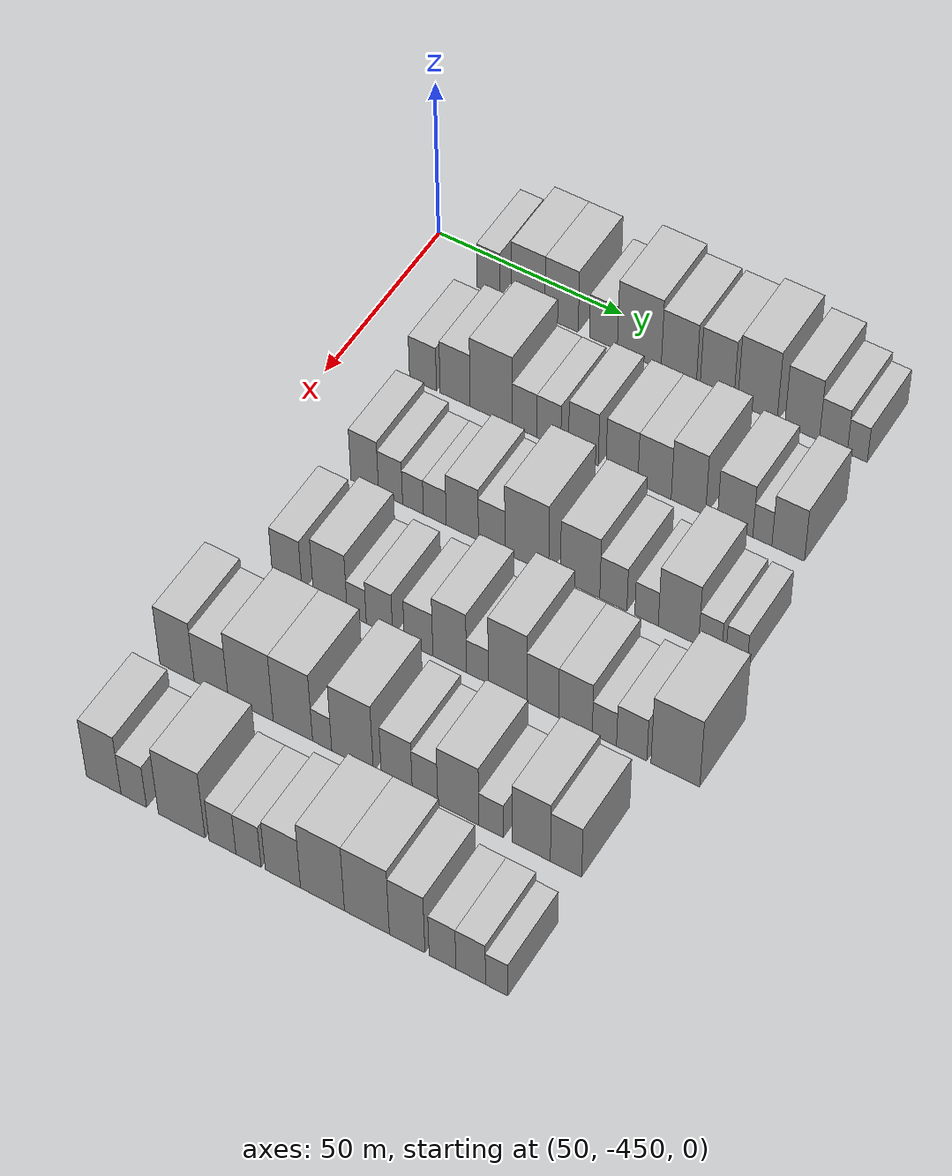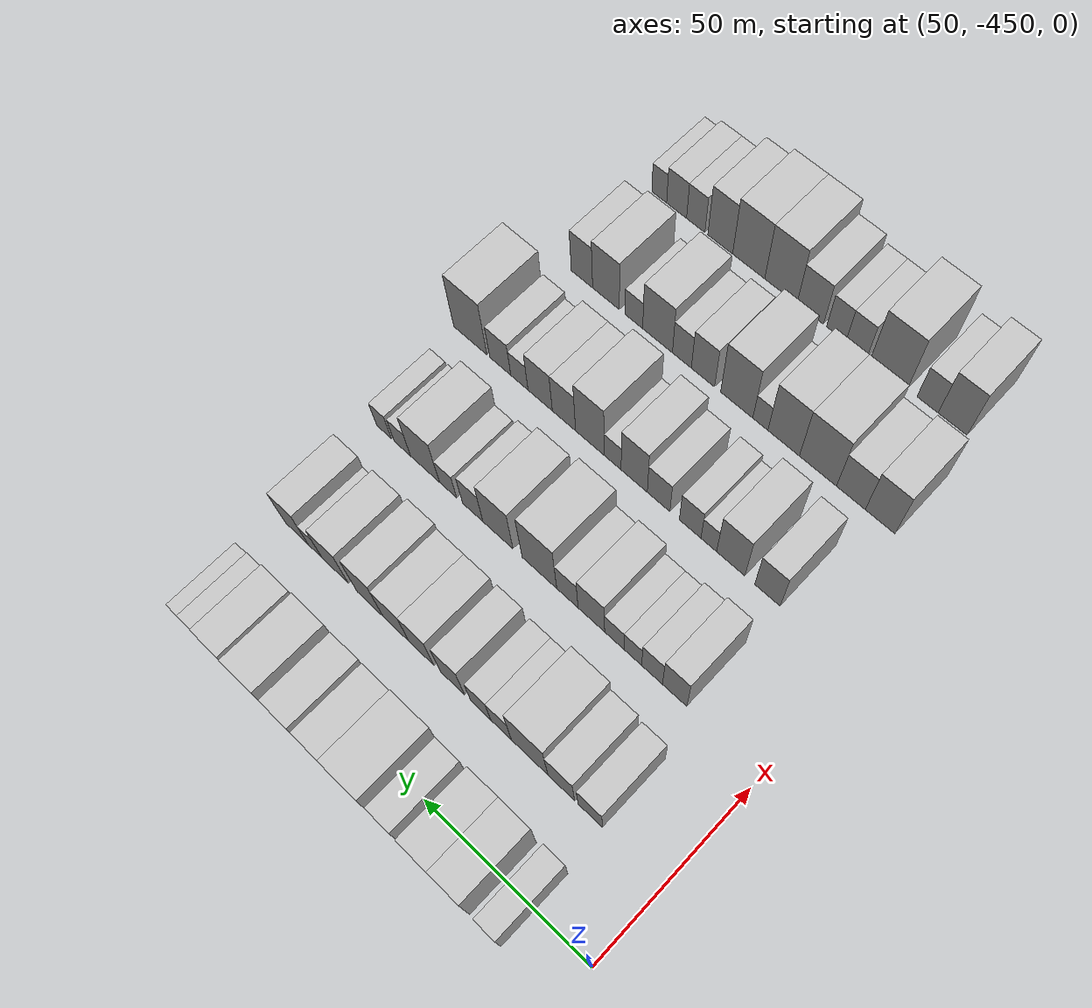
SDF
<sdf version="1.6">
 <world name="default">
  <model name="building_13">
   <static>1</static>
   <pose>50.0000 -430.3010 0 0.000000 0.000000 0.000000</pose>
   <link name="link">
    <pose>0 0 7.50 0 0 0</pose>
    <collision name="collision"><geometry><box><size>20.0000 6.2887 15.0000</size></box></geometry></collision>
    <visual name="visual">
     <cast_shadows>0</cast_shadows>
     <geometry><box><size>20.0000 6.2887 15.0000</size></box></geometry>
     <material>
      <script>
       <uri>model://HANNAS_wall/materials/scripts</uri>
       <uri>model://HANNAS_wall/materials/textures</uri>
       <name>vrc/HANNAS_wall</name>
      </script>
     </material>
    </visual>
   </link>
  </model>
  <model name="building_14">
   <static>1</static>
   <pose>50.0000 -419.5498 0 0.000000 0.000000 0.000000</pose>
   <link name="link">
    <pose>0 0 10.50 0 0 0</pose>
    <collision name="collision"><geometry><box><size>20.0000 9.2139 21.0000</size></box></geometry></collision>
    <visual name="visual">
     <cast_shadows>0</cast_shadows>
     <geometry><box><size>20.0000 9.2139 21.0000</size></box></geometry>
     <material>
      <script>
       <uri>model://HANNAS_wall/materials/scripts</uri>
       <uri>model://HANNAS_wall/materials/textures</uri>
       <name>vrc/HANNAS_wall</name>
      </script>
     </material>
    </visual>
   </link>
  </model>
  <model name="building_15">
   <static>1</static>
   <pose>50.0000 -410.4374 0 0.000000 0.000000 0.000000</pose>
   <link name="link">
    <pose>0 0 10.50 0 0 0</pose>
    <collision name="collision"><geometry><box><size>20.0000 9.0108 21.0000</size></box></geometry></collision>
    <visual name="visual">
     <cast_shadows>0</cast_shadows>
     <geometry><box><size>20.0000 9.0108 21.0000</size></box></geometry>
     <material>
      <script>
       <uri>model://HANNAS_wall/materials/scripts</uri>
       <uri>model://HANNAS_wall/materials/textures</uri>
       <name>vrc/HANNAS_wall</name>
      </script>
     </material>
    </visual>
   </link>
  </model>
  <model name="building_16">
   <static>1</static>
   <pose>50.0000 -399.1959 0 0.000000 0.000000 0.000000</pose>
   <link name="link">
    <pose>0 0 7.50 0 0 0</pose>
    <collision name="collision"><geometry><box><size>20.0000 7.4723 15.0000</size></box></geometry></collision>
    <visual name="visual">
     <cast_shadows>0</cast_shadows>
     <geometry><box><size>20.0000 7.4723 15.0000</size></box></geometry>
     <material>
      <script>
       <uri>model://HANNAS_wall/materials/scripts</uri>
       <uri>model://HANNAS_wall/materials/textures</uri>
       <name>vrc/HANNAS_wall</name>
      </script>
     </material>
    </visual>
   </link>
  </model>
  <model name="building_17">
   <static>1</static>
   <pose>50.0000 -389.6461 0 0.000000 0.000000 0.000000</pose>
   <link name="link">
    <pose>0 0 12.00 0 0 0</pose>
    <collision name="collision"><geometry><box><size>20.0000 11.6273 24.0000</size></box></geometry></collision>
    <visual name="visual">
     <cast_shadows>0</cast_shadows>
     <geometry><box><size>20.0000 11.6273 24.0000</size></box></geometry>
     <material>
      <script>
       <uri>model://HANNAS_wall/materials/scripts</uri>
       <uri>model://HANNAS_wall/materials/textures</uri>
       <name>vrc/HANNAS_wall</name>
      </script>
     </material>
    </visual>
   </link>
  </model>
  <model name="building_18">
   <static>1</static>
   <pose>50.0000 -379.2000 0 0.000000 0.000000 0.000000</pose>
   <link name="link">
    <pose>0 0 10.50 0 0 0</pose>
    <collision name="collision"><geometry><box><size>20.0000 9.2649 21.0000</size></box></geometry></collision>
    <visual name="visual">
     <cast_shadows>0</cast_shadows>
     <geometry><box><size>20.0000 9.2649 21.0000</size></box></geometry>
     <material>
      <script>
       <uri>model://HANNAS_wall/materials/scripts</uri>
       <uri>model://HANNAS_wall/materials/textures</uri>
       <name>vrc/HANNAS_wall</name>
      </script>
     </material>
    </visual>
   </link>
  </model>
  <model name="building_19">
   <static>1</static>
   <pose>50.0000 -369.1609 0 0.000000 0.000000 0.000000</pose>
   <link name="link">
    <pose>0 0 10.50 0 0 0</pose>
    <collision name="collision"><geometry><box><size>20.0000 8.8132 21.0000</size></box></geometry></collision>
    <visual name="visual">
     <cast_shadows>0</cast_shadows>
     <geometry><box><size>20.0000 8.8132 21.0000</size></box></geometry>
     <material>
      <script>
       <uri>model://HANNAS_wall/materials/scripts</uri>
       <uri>model://HANNAS_wall/materials/textures</uri>
       <name>vrc/HANNAS_wall</name>
      </script>
     </material>
    </visual>
   </link>
  </model>
  <model name="building_20">
   <static>1</static>
   <pose>50.0000 -358.6458 0 0.000000 0.000000 0.000000</pose>
   <link name="link">
    <pose>0 0 12.00 0 0 0</pose>
    <collision name="collision"><geometry><box><size>20.0000 10.2170 24.0000</size></box></geometry></collision>
    <visual name="visual">
     <cast_shadows>0</cast_shadows>
     <geometry><box><size>20.0000 10.2170 24.0000</size></box></geometry>
     <material>
      <script>
       <uri>model://HANNAS_wall/materials/scripts</uri>
       <uri>model://HANNAS_wall/materials/textures</uri>
       <name>vrc/HANNAS_wall</name>
      </script>
     </material>
    </visual>
   </link>
  </model>
  <model name="building_21">
   <static>1</static>
   <pose>50.0000 -347.1044 0 0.000000 0.000000 0.000000</pose>
   <link name="link">
    <pose>0 0 10.50 0 0 0</pose>
    <collision name="collision"><geometry><box><size>20.0000 8.8658 21.0000</size></box></geometry></collision>
    <visual name="visual">
     <cast_shadows>0</cast_shadows>
     <geometry><box><size>20.0000 8.8658 21.0000</size></box></geometry>
     <material>
      <script>
       <uri>model://HANNAS_wall/materials/scripts</uri>
       <uri>model://HANNAS_wall/materials/textures</uri>
       <name>vrc/HANNAS_wall</name>
      </script>
     </material>
    </visual>
   </link>
  </model>
  <model name="building_22">
   <static>1</static>
   <pose>50.0000 -339.1000 0 0.000000 0.000000 0.000000</pose>
   <link name="link">
    <pose>0 0 7.50 0 0 0</pose>
    <collision name="collision"><geometry><box><size>20.0000 7.1430 15.0000</size></box></geometry></collision>
    <visual name="visual">
     <cast_shadows>0</cast_shadows>
     <geometry><box><size>20.0000 7.1430 15.0000</size></box></geometry>
     <material>
      <script>
       <uri>model://HANNAS_wall/materials/scripts</uri>
       <uri>model://HANNAS_wall/materials/textures</uri>
       <name>vrc/HANNAS_wall</name>
      </script>
     </material>
    </visual>
   </link>
  </model>
  <model name="building_23">
   <static>1</static>
   <pose>50.0000 -332.9727 0 0.000000 0.000000 0.000000</pose>
   <link name="link">
    <pose>0 0 6.00 0 0 0</pose>
    <collision name="collision"><geometry><box><size>20.0000 5.1115 12.0000</size></box></geometry></collision>
    <visual name="visual">
     <cast_shadows>0</cast_shadows>
     <geometry><box><size>20.0000 5.1115 12.0000</size></box></geometry>
     <material>
      <script>
       <uri>model://HANNAS_wall/materials/scripts</uri>
       <uri>model://HANNAS_wall/materials/textures</uri>
       <name>vrc/HANNAS_wall</name>
      </script>
     </material>
    </visual>
   </link>
  </model>
  <model name="building_128">
   <static>1</static>
   <pose>82.0000 -428.5388 0 0.000000 0.000000 0.000000</pose>
   <link name="link">
    <pose>0 0 7.50 0 0 0</pose>
    <collision name="collision"><geometry><box><size>20.0000 7.2630 15.0000</size></box></geometry></collision>
    <visual name="visual">
     <cast_shadows>0</cast_shadows>
     <geometry><box><size>20.0000 7.2630 15.0000</size></box></geometry>
     <material>
      <script>
       <uri>model://HANNAS_wall/materials/scripts</uri>
       <uri>model://HANNAS_wall/materials/textures</uri>
       <name>vrc/HANNAS_wall</name>
      </script>
     </material>
    </visual>
   </link>
  </model>
  <model name="building_129">
   <static>1</static>
   <pose>82.0000 -419.8873 0 0.000000 0.000000 0.000000</pose>
   <link name="link">
    <pose>0 0 9.00 0 0 0</pose>
    <collision name="collision"><geometry><box><size>20.0000 8.0400 18.0000</size></box></geometry></collision>
    <visual name="visual">
     <cast_shadows>0</cast_shadows>
     <geometry><box><size>20.0000 8.0400 18.0000</size></box></geometry>
     <material>
      <script>
       <uri>model://HANNAS_wall/materials/scripts</uri>
       <uri>model://HANNAS_wall/materials/textures</uri>
       <name>vrc/HANNAS_wall</name>
      </script>
     </material>
    </visual>
   </link>
  </model>
  <model name="building_130">
   <static>1</static>
   <pose>82.0000 -410.2514 0 0.000000 0.000000 0.000000</pose>
   <link name="link">
    <pose>0 0 12.00 0 0 0</pose>
    <collision name="collision"><geometry><box><size>20.0000 11.2320 24.0000</size></box></geometry></collision>
    <visual name="visual">
     <cast_shadows>0</cast_shadows>
     <geometry><box><size>20.0000 11.2320 24.0000</size></box></geometry>
     <material>
      <script>
       <uri>model://HANNAS_wall/materials/scripts</uri>
       <uri>model://HANNAS_wall/materials/textures</uri>
       <name>vrc/HANNAS_wall</name>
      </script>
     </material>
    </visual>
   </link>
  </model>
  <model name="building_131">
   <static>1</static>
   <pose>82.0000 -401.4097 0 0.000000 0.000000 0.000000</pose>
   <link name="link">
    <pose>0 0 7.50 0 0 0</pose>
    <collision name="collision"><geometry><box><size>20.0000 6.4513 15.0000</size></box></geometry></collision>
    <visual name="visual">
     <cast_shadows>0</cast_shadows>
     <geometry><box><size>20.0000 6.4513 15.0000</size></box></geometry>
     <material>
      <script>
       <uri>model://HANNAS_wall/materials/scripts</uri>
       <uri>model://HANNAS_wall/materials/textures</uri>
       <name>vrc/HANNAS_wall</name>
      </script>
     </material>
    </visual>
   </link>
  </model>
  <model name="building_132">
   <static>1</static>
   <pose>82.0000 -395.0272 0 0.000000 0.000000 0.000000</pose>
   <link name="link">
    <pose>0 0 7.50 0 0 0</pose>
    <collision name="collision"><geometry><box><size>20.0000 6.3139 15.0000</size></box></geometry></collision>
    <visual name="visual">
     <cast_shadows>0</cast_shadows>
     <geometry><box><size>20.0000 6.3139 15.0000</size></box></geometry>
     <material>
      <script>
       <uri>model://HANNAS_wall/materials/scripts</uri>
       <uri>model://HANNAS_wall/materials/textures</uri>
       <name>vrc/HANNAS_wall</name>
      </script>
     </material>
    </visual>
   </link>
  </model>
  <model name="building_133">
   <static>1</static>
   <pose>82.0000 -385.9785 0 0.000000 0.000000 0.000000</pose>
   <link name="link">
    <pose>0 0 9.00 0 0 0</pose>
    <collision name="collision"><geometry><box><size>20.0000 7.7834 18.0000</size></box></geometry></collision>
    <visual name="visual">
     <cast_shadows>0</cast_shadows>
     <geometry><box><size>20.0000 7.7834 18.0000</size></box></geometry>
     <material>
      <script>
       <uri>model://HANNAS_wall/materials/scripts</uri>
       <uri>model://HANNAS_wall/materials/textures</uri>
       <name>vrc/HANNAS_wall</name>
      </script>
     </material>
    </visual>
   </link>
  </model>
  <model name="building_134">
   <static>1</static>
   <pose>82.0000 -375.9526 0 0.000000 0.000000 0.000000</pose>
   <link name="link">
    <pose>0 0 9.00 0 0 0</pose>
    <collision name="collision"><geometry><box><size>20.0000 8.2684 18.0000</size></box></geometry></collision>
    <visual name="visual">
     <cast_shadows>0</cast_shadows>
     <geometry><box><size>20.0000 8.2684 18.0000</size></box></geometry>
     <material>
      <script>
       <uri>model://HANNAS_wall/materials/scripts</uri>
       <uri>model://HANNAS_wall/materials/textures</uri>
       <name>vrc/HANNAS_wall</name>
      </script>
     </material>
    </visual>
   </link>
  </model>
  <model name="building_135">
   <static>1</static>
   <pose>82.0000 -367.5201 0 0.000000 0.000000 0.000000</pose>
   <link name="link">
    <pose>0 0 9.00 0 0 0</pose>
    <collision name="collision"><geometry><box><size>20.0000 8.5966 18.0000</size></box></geometry></collision>
    <visual name="visual">
     <cast_shadows>0</cast_shadows>
     <geometry><box><size>20.0000 8.5966 18.0000</size></box></geometry>
     <material>
      <script>
       <uri>model://HANNAS_wall/materials/scripts</uri>
       <uri>model://HANNAS_wall/materials/textures</uri>
       <name>vrc/HANNAS_wall</name>
      </script>
     </material>
    </visual>
   </link>
  </model>
  <model name="building_136">
   <static>1</static>
   <pose>82.0000 -358.8320 0 0.000000 0.000000 0.000000</pose>
   <link name="link">
    <pose>0 0 10.50 0 0 0</pose>
    <collision name="collision"><geometry><box><size>20.0000 8.7795 21.0000</size></box></geometry></collision>
    <visual name="visual">
     <cast_shadows>0</cast_shadows>
     <geometry><box><size>20.0000 8.7795 21.0000</size></box></geometry>
     <material>
      <script>
       <uri>model://HANNAS_wall/materials/scripts</uri>
       <uri>model://HANNAS_wall/materials/textures</uri>
       <name>vrc/HANNAS_wall</name>
      </script>
     </material>
    </visual>
   </link>
  </model>
  <model name="building_137">
   <static>1</static>
   <pose>82.0000 -346.9448 0 0.000000 0.000000 0.000000</pose>
   <link name="link">
    <pose>0 0 9.00 0 0 0</pose>
    <collision name="collision"><geometry><box><size>20.0000 8.9950 18.0000</size></box></geometry></collision>
    <visual name="visual">
     <cast_shadows>0</cast_shadows>
     <geometry><box><size>20.0000 8.9950 18.0000</size></box></geometry>
     <material>
      <script>
       <uri>model://HANNAS_wall/materials/scripts</uri>
       <uri>model://HANNAS_wall/materials/textures</uri>
       <name>vrc/HANNAS_wall</name>
      </script>
     </material>
    </visual>
   </link>
  </model>
  <model name="building_138">
   <static>1</static>
   <pose>82.0000 -340.0449 0 0.000000 0.000000 0.000000</pose>
   <link name="link">
    <pose>0 0 6.00 0 0 0</pose>
    <collision name="collision"><geometry><box><size>20.0000 4.8046 12.0000</size></box></geometry></collision>
    <visual name="visual">
     <cast_shadows>0</cast_shadows>
     <geometry><box><size>20.0000 4.8046 12.0000</size></box></geometry>
     <material>
      <script>
       <uri>model://HANNAS_wall/materials/scripts</uri>
       <uri>model://HANNAS_wall/materials/textures</uri>
       <name>vrc/HANNAS_wall</name>
      </script>
     </material>
    </visual>
   </link>
  </model>
  <model name="building_139">
   <static>1</static>
   <pose>82.0000 -333.5571 0 0.000000 0.000000 0.000000</pose>
   <link name="link">
    <pose>0 0 9.00 0 0 0</pose>
    <collision name="collision"><geometry><box><size>20.0000 8.1710 18.0000</size></box></geometry></collision>
    <visual name="visual">
     <cast_shadows>0</cast_shadows>
     <geometry><box><size>20.0000 8.1710 18.0000</size></box></geometry>
     <material>
      <script>
       <uri>model://HANNAS_wall/materials/scripts</uri>
       <uri>model://HANNAS_wall/materials/textures</uri>
       <name>vrc/HANNAS_wall</name>
      </script>
     </material>
    </visual>
   </link>
  </model>
  <model name="building_249">
   <static>1</static>
   <pose>114.0000 -424.1147 0 0.000000 0.000000 0.000000</pose>
   <link name="link">
    <pose>0 0 9.00 0 0 0</pose>
    <collision name="collision"><geometry><box><size>20.0000 7.3198 18.0000</size></box></geometry></collision>
    <visual name="visual">
     <cast_shadows>0</cast_shadows>
     <geometry><box><size>20.0000 7.3198 18.0000</size></box></geometry>
     <material>
      <script>
       <uri>model://HANNAS_wall/materials/scripts</uri>
       <uri>model://HANNAS_wall/materials/textures</uri>
       <name>vrc/HANNAS_wall</name>
      </script>
     </material>
    </visual>
   </link>
  </model>
  <model name="building_250">
   <static>1</static>
   <pose>114.0000 -417.2787 0 0.000000 0.000000 0.000000</pose>
   <link name="link">
    <pose>0 0 7.50 0 0 0</pose>
    <collision name="collision"><geometry><box><size>20.0000 6.3522 15.0000</size></box></geometry></collision>
    <visual name="visual">
     <cast_shadows>0</cast_shadows>
     <geometry><box><size>20.0000 6.3522 15.0000</size></box></geometry>
     <material>
      <script>
       <uri>model://HANNAS_wall/materials/scripts</uri>
       <uri>model://HANNAS_wall/materials/textures</uri>
       <name>vrc/HANNAS_wall</name>
      </script>
     </material>
    </visual>
   </link>
  </model>
  <model name="building_251">
   <static>1</static>
   <pose>114.0000 -411.3680 0 0.000000 0.000000 0.000000</pose>
   <link name="link">
    <pose>0 0 6.00 0 0 0</pose>
    <collision name="collision"><geometry><box><size>20.0000 5.4691 12.0000</size></box></geometry></collision>
    <visual name="visual">
     <cast_shadows>0</cast_shadows>
     <geometry><box><size>20.0000 5.4691 12.0000</size></box></geometry>
     <material>
      <script>
       <uri>model://HANNAS_wall/materials/scripts</uri>
       <uri>model://HANNAS_wall/materials/textures</uri>
       <name>vrc/HANNAS_wall</name>
      </script>
     </material>
    </visual>
   </link>
  </model>
  <model name="building_252">
   <static>1</static>
   <pose>114.0000 -405.6461 0 0.000000 0.000000 0.000000</pose>
   <link name="link">
    <pose>0 0 6.00 0 0 0</pose>
    <collision name="collision"><geometry><box><size>20.0000 5.9747 12.0000</size></box></geometry></collision>
    <visual name="visual">
     <cast_shadows>0</cast_shadows>
     <geometry><box><size>20.0000 5.9747 12.0000</size></box></geometry>
     <material>
      <script>
       <uri>model://HANNAS_wall/materials/scripts</uri>
       <uri>model://HANNAS_wall/materials/textures</uri>
       <name>vrc/HANNAS_wall</name>
      </script>
     </material>
    </visual>
   </link>
  </model>
  <model name="building_253">
   <static>1</static>
   <pose>114.0000 -398.4708 0 0.000000 0.000000 0.000000</pose>
   <link name="link">
    <pose>0 0 9.00 0 0 0</pose>
    <collision name="collision"><geometry><box><size>20.0000 8.3759 18.0000</size></box></geometry></collision>
    <visual name="visual">
     <cast_shadows>0</cast_shadows>
     <geometry><box><size>20.0000 8.3759 18.0000</size></box></geometry>
     <material>
      <script>
       <uri>model://HANNAS_wall/materials/scripts</uri>
       <uri>model://HANNAS_wall/materials/textures</uri>
       <name>vrc/HANNAS_wall</name>
      </script>
     </material>
    </visual>
   </link>
  </model>
  <model name="building_254">
   <static>1</static>
   <pose>114.0000 -390.8749 0 0.000000 0.000000 0.000000</pose>
   <link name="link">
    <pose>0 0 7.50 0 0 0</pose>
    <collision name="collision"><geometry><box><size>20.0000 6.8160 15.0000</size></box></geometry></collision>
    <visual name="visual">
     <cast_shadows>0</cast_shadows>
     <geometry><box><size>20.0000 6.8160 15.0000</size></box></geometry>
     <material>
      <script>
       <uri>model://HANNAS_wall/materials/scripts</uri>
       <uri>model://HANNAS_wall/materials/textures</uri>
       <name>vrc/HANNAS_wall</name>
      </script>
     </material>
    </visual>
   </link>
  </model>
  <model name="building_255">
   <static>1</static>
   <pose>114.0000 -381.8491 0 0.000000 0.000000 0.000000</pose>
   <link name="link">
    <pose>0 0 12.00 0 0 0</pose>
    <collision name="collision"><geometry><box><size>20.0000 11.2356 24.0000</size></box></geometry></collision>
    <visual name="visual">
     <cast_shadows>0</cast_shadows>
     <geometry><box><size>20.0000 11.2356 24.0000</size></box></geometry>
     <material>
      <script>
       <uri>model://HANNAS_wall/materials/scripts</uri>
       <uri>model://HANNAS_wall/materials/textures</uri>
       <name>vrc/HANNAS_wall</name>
      </script>
     </material>
    </visual>
   </link>
  </model>
  <model name="building_256">
   <static>1</static>
   <pose>114.0000 -368.2294 0 0.000000 0.000000 0.000000</pose>
   <link name="link">
    <pose>0 0 10.50 0 0 0</pose>
    <collision name="collision"><geometry><box><size>20.0000 10.0038 21.0000</size></box></geometry></collision>
    <visual name="visual">
     <cast_shadows>0</cast_shadows>
     <geometry><box><size>20.0000 10.0038 21.0000</size></box></geometry>
     <material>
      <script>
       <uri>model://HANNAS_wall/materials/scripts</uri>
       <uri>model://HANNAS_wall/materials/textures</uri>
       <name>vrc/HANNAS_wall</name>
      </script>
     </material>
    </visual>
   </link>
  </model>
  <model name="building_257">
   <static>1</static>
   <pose>114.0000 -359.8080 0 0.000000 0.000000 0.000000</pose>
   <link name="link">
    <pose>0 0 7.50 0 0 0</pose>
    <collision name="collision"><geometry><box><size>20.0000 6.8392 15.0000</size></box></geometry></collision>
    <visual name="visual">
     <cast_shadows>0</cast_shadows>
     <geometry><box><size>20.0000 6.8392 15.0000</size></box></geometry>
     <material>
      <script>
       <uri>model://HANNAS_wall/materials/scripts</uri>
       <uri>model://HANNAS_wall/materials/textures</uri>
       <name>vrc/HANNAS_wall</name>
      </script>
     </material>
    </visual>
   </link>
  </model>
  <model name="building_258">
   <static>1</static>
   <pose>114.0000 -351.4508 0 0.000000 0.000000 0.000000</pose>
   <link name="link">
    <pose>0 0 6.00 0 0 0</pose>
    <collision name="collision"><geometry><box><size>20.0000 5.8752 12.0000</size></box></geometry></collision>
    <visual name="visual">
     <cast_shadows>0</cast_shadows>
     <geometry><box><size>20.0000 5.8752 12.0000</size></box></geometry>
     <material>
      <script>
       <uri>model://HANNAS_wall/materials/scripts</uri>
       <uri>model://HANNAS_wall/materials/textures</uri>
       <name>vrc/HANNAS_wall</name>
      </script>
     </material>
    </visual>
   </link>
  </model>
  <model name="building_259">
   <static>1</static>
   <pose>114.0000 -343.4964 0 0.000000 0.000000 0.000000</pose>
   <link name="link">
    <pose>0 0 10.50 0 0 0</pose>
    <collision name="collision"><geometry><box><size>20.0000 10.0335 21.0000</size></box></geometry></collision>
    <visual name="visual">
     <cast_shadows>0</cast_shadows>
     <geometry><box><size>20.0000 10.0335 21.0000</size></box></geometry>
     <material>
      <script>
       <uri>model://HANNAS_wall/materials/scripts</uri>
       <uri>model://HANNAS_wall/materials/textures</uri>
       <name>vrc/HANNAS_wall</name>
      </script>
     </material>
    </visual>
   </link>
  </model>
  <model name="building_260">
   <static>1</static>
   <pose>114.0000 -335.6283 0 0.000000 0.000000 0.000000</pose>
   <link name="link">
    <pose>0 0 6.00 0 0 0</pose>
    <collision name="collision"><geometry><box><size>20.0000 5.7027 12.0000</size></box></geometry></collision>
    <visual name="visual">
     <cast_shadows>0</cast_shadows>
     <geometry><box><size>20.0000 5.7027 12.0000</size></box></geometry>
     <material>
      <script>
       <uri>model://HANNAS_wall/materials/scripts</uri>
       <uri>model://HANNAS_wall/materials/textures</uri>
       <name>vrc/HANNAS_wall</name>
      </script>
     </material>
    </visual>
   </link>
  </model>
  <model name="building_261">
   <static>1</static>
   <pose>114.0000 -329.1551 0 0.000000 0.000000 0.000000</pose>
   <link name="link">
    <pose>0 0 6.00 0 0 0</pose>
    <collision name="collision"><geometry><box><size>20.0000 5.2436 12.0000</size></box></geometry></collision>
    <visual name="visual">
     <cast_shadows>0</cast_shadows>
     <geometry><box><size>20.0000 5.2436 12.0000</size></box></geometry>
     <material>
      <script>
       <uri>model://HANNAS_wall/materials/scripts</uri>
       <uri>model://HANNAS_wall/materials/textures</uri>
       <name>vrc/HANNAS_wall</name>
      </script>
     </material>
    </visual>
   </link>
  </model>
  <model name="building_369">
   <static>1</static>
   <pose>146.0000 -423.9858 0 0.000000 0.000000 0.000000</pose>
   <link name="link">
    <pose>0 0 9.00 0 0 0</pose>
    <collision name="collision"><geometry><box><size>20.0000 7.7063 18.0000</size></box></geometry></collision>
    <visual name="visual">
     <cast_shadows>0</cast_shadows>
     <geometry><box><size>20.0000 7.7063 18.0000</size></box></geometry>
     <material>
      <script>
       <uri>model://HANNAS_wall/materials/scripts</uri>
       <uri>model://HANNAS_wall/materials/textures</uri>
       <name>vrc/HANNAS_wall</name>
      </script>
     </material>
    </visual>
   </link>
  </model>
  <model name="building_370">
   <static>1</static>
   <pose>146.0000 -412.7610 0 0.000000 0.000000 0.000000</pose>
   <link name="link">
    <pose>0 0 10.50 0 0 0</pose>
    <collision name="collision"><geometry><box><size>20.0000 8.7433 21.0000</size></box></geometry></collision>
    <visual name="visual">
     <cast_shadows>0</cast_shadows>
     <geometry><box><size>20.0000 8.7433 21.0000</size></box></geometry>
     <material>
      <script>
       <uri>model://HANNAS_wall/materials/scripts</uri>
       <uri>model://HANNAS_wall/materials/textures</uri>
       <name>vrc/HANNAS_wall</name>
      </script>
     </material>
    </visual>
   </link>
  </model>
  <model name="building_371">
   <static>1</static>
   <pose>146.0000 -405.9318 0 0.000000 0.000000 0.000000</pose>
   <link name="link">
    <pose>0 0 6.00 0 0 0</pose>
    <collision name="collision"><geometry><box><size>20.0000 4.9151 12.0000</size></box></geometry></collision>
    <visual name="visual">
     <cast_shadows>0</cast_shadows>
     <geometry><box><size>20.0000 4.9151 12.0000</size></box></geometry>
     <material>
      <script>
       <uri>model://HANNAS_wall/materials/scripts</uri>
       <uri>model://HANNAS_wall/materials/textures</uri>
       <name>vrc/HANNAS_wall</name>
      </script>
     </material>
    </visual>
   </link>
  </model>
  <model name="building_372">
   <static>1</static>
   <pose>146.0000 -400.0791 0 0.000000 0.000000 0.000000</pose>
   <link name="link">
    <pose>0 0 7.50 0 0 0</pose>
    <collision name="collision"><geometry><box><size>20.0000 6.7902 15.0000</size></box></geometry></collision>
    <visual name="visual">
     <cast_shadows>0</cast_shadows>
     <geometry><box><size>20.0000 6.7902 15.0000</size></box></geometry>
     <material>
      <script>
       <uri>model://HANNAS_wall/materials/scripts</uri>
       <uri>model://HANNAS_wall/materials/textures</uri>
       <name>vrc/HANNAS_wall</name>
      </script>
     </material>
    </visual>
   </link>
  </model>
  <model name="building_373">
   <static>1</static>
   <pose>146.0000 -390.0543 0 0.000000 0.000000 0.000000</pose>
   <link name="link">
    <pose>0 0 7.50 0 0 0</pose>
    <collision name="collision"><geometry><box><size>20.0000 7.2594 15.0000</size></box></geometry></collision>
    <visual name="visual">
     <cast_shadows>0</cast_shadows>
     <geometry><box><size>20.0000 7.2594 15.0000</size></box></geometry>
     <material>
      <script>
       <uri>model://HANNAS_wall/materials/scripts</uri>
       <uri>model://HANNAS_wall/materials/textures</uri>
       <name>vrc/HANNAS_wall</name>
      </script>
     </material>
    </visual>
   </link>
  </model>
  <model name="building_374">
   <static>1</static>
   <pose>146.0000 -382.1661 0 0.000000 0.000000 0.000000</pose>
   <link name="link">
    <pose>0 0 10.50 0 0 0</pose>
    <collision name="collision"><geometry><box><size>20.0000 8.5168 21.0000</size></box></geometry></collision>
    <visual name="visual">
     <cast_shadows>0</cast_shadows>
     <geometry><box><size>20.0000 8.5168 21.0000</size></box></geometry>
     <material>
      <script>
       <uri>model://HANNAS_wall/materials/scripts</uri>
       <uri>model://HANNAS_wall/materials/textures</uri>
       <name>vrc/HANNAS_wall</name>
      </script>
     </material>
    </visual>
   </link>
  </model>
  <model name="building_375">
   <static>1</static>
   <pose>146.0000 -375.1636 0 0.000000 0.000000 0.000000</pose>
   <link name="link">
    <pose>0 0 6.00 0 0 0</pose>
    <collision name="collision"><geometry><box><size>20.0000 5.4883 12.0000</size></box></geometry></collision>
    <visual name="visual">
     <cast_shadows>0</cast_shadows>
     <geometry><box><size>20.0000 5.4883 12.0000</size></box></geometry>
     <material>
      <script>
       <uri>model://HANNAS_wall/materials/scripts</uri>
       <uri>model://HANNAS_wall/materials/textures</uri>
       <name>vrc/HANNAS_wall</name>
      </script>
     </material>
    </visual>
   </link>
  </model>
  <model name="building_376">
   <static>1</static>
   <pose>146.0000 -367.6193 0 0.000000 0.000000 0.000000</pose>
   <link name="link">
    <pose>0 0 12.00 0 0 0</pose>
    <collision name="collision"><geometry><box><size>20.0000 9.6003 24.0000</size></box></geometry></collision>
    <visual name="visual">
     <cast_shadows>0</cast_shadows>
     <geometry><box><size>20.0000 9.6003 24.0000</size></box></geometry>
     <material>
      <script>
       <uri>model://HANNAS_wall/materials/scripts</uri>
       <uri>model://HANNAS_wall/materials/textures</uri>
       <name>vrc/HANNAS_wall</name>
      </script>
     </material>
    </visual>
   </link>
  </model>
  <model name="building_377">
   <static>1</static>
   <pose>146.0000 -358.8707 0 0.000000 0.000000 0.000000</pose>
   <link name="link">
    <pose>0 0 9.00 0 0 0</pose>
    <collision name="collision"><geometry><box><size>20.0000 7.8969 18.0000</size></box></geometry></collision>
    <visual name="visual">
     <cast_shadows>0</cast_shadows>
     <geometry><box><size>20.0000 7.8969 18.0000</size></box></geometry>
     <material>
      <script>
       <uri>model://HANNAS_wall/materials/scripts</uri>
       <uri>model://HANNAS_wall/materials/textures</uri>
       <name>vrc/HANNAS_wall</name>
      </script>
     </material>
    </visual>
   </link>
  </model>
  <model name="building_378">
   <static>1</static>
   <pose>146.0000 -350.7572 0 0.000000 0.000000 0.000000</pose>
   <link name="link">
    <pose>0 0 9.00 0 0 0</pose>
    <collision name="collision"><geometry><box><size>20.0000 8.3303 18.0000</size></box></geometry></collision>
    <visual name="visual">
     <cast_shadows>0</cast_shadows>
     <geometry><box><size>20.0000 8.3303 18.0000</size></box></geometry>
     <material>
      <script>
       <uri>model://HANNAS_wall/materials/scripts</uri>
       <uri>model://HANNAS_wall/materials/textures</uri>
       <name>vrc/HANNAS_wall</name>
      </script>
     </material>
    </visual>
   </link>
  </model>
  <model name="building_379">
   <static>1</static>
   <pose>146.0000 -343.6149 0 0.000000 0.000000 0.000000</pose>
   <link name="link">
    <pose>0 0 6.00 0 0 0</pose>
    <collision name="collision"><geometry><box><size>20.0000 5.9542 12.0000</size></box></geometry></collision>
    <visual name="visual">
     <cast_shadows>0</cast_shadows>
     <geometry><box><size>20.0000 5.9542 12.0000</size></box></geometry>
     <material>
      <script>
       <uri>model://HANNAS_wall/materials/scripts</uri>
       <uri>model://HANNAS_wall/materials/textures</uri>
       <name>vrc/HANNAS_wall</name>
      </script>
     </material>
    </visual>
   </link>
  </model>
  <model name="building_380">
   <static>1</static>
   <pose>146.0000 -336.9383 0 0.000000 0.000000 0.000000</pose>
   <link name="link">
    <pose>0 0 7.50 0 0 0</pose>
    <collision name="collision"><geometry><box><size>20.0000 7.3992 15.0000</size></box></geometry></collision>
    <visual name="visual">
     <cast_shadows>0</cast_shadows>
     <geometry><box><size>20.0000 7.3992 15.0000</size></box></geometry>
     <material>
      <script>
       <uri>model://HANNAS_wall/materials/scripts</uri>
       <uri>model://HANNAS_wall/materials/textures</uri>
       <name>vrc/HANNAS_wall</name>
      </script>
     </material>
    </visual>
   </link>
  </model>
  <model name="building_381">
   <static>1</static>
   <pose>146.0000 -326.3281 0 0.000000 0.000000 0.000000</pose>
   <link name="link">
    <pose>0 0 12.00 0 0 0</pose>
    <collision name="collision"><geometry><box><size>20.0000 11.8211 24.0000</size></box></geometry></collision>
    <visual name="visual">
     <cast_shadows>0</cast_shadows>
     <geometry><box><size>20.0000 11.8211 24.0000</size></box></geometry>
     <material>
      <script>
       <uri>model://HANNAS_wall/materials/scripts</uri>
       <uri>model://HANNAS_wall/materials/textures</uri>
       <name>vrc/HANNAS_wall</name>
      </script>
     </material>
    </visual>
   </link>
  </model>
  <model name="building_487">
   <static>1</static>
   <pose>178.0000 -431.5425 0 0.000000 0.000000 0.000000</pose>
   <link name="link">
    <pose>0 0 10.50 0 0 0</pose>
    <collision name="collision"><geometry><box><size>20.0000 8.9365 21.0000</size></box></geometry></collision>
    <visual name="visual">
     <cast_shadows>0</cast_shadows>
     <geometry><box><size>20.0000 8.9365 21.0000</size></box></geometry>
     <material>
      <script>
       <uri>model://HANNAS_wall/materials/scripts</uri>
       <uri>model://HANNAS_wall/materials/textures</uri>
       <name>vrc/HANNAS_wall</name>
      </script>
     </material>
    </visual>
   </link>
  </model>
  <model name="building_488">
   <static>1</static>
   <pose>178.0000 -422.6701 0 0.000000 0.000000 0.000000</pose>
   <link name="link">
    <pose>0 0 9.00 0 0 0</pose>
    <collision name="collision"><geometry><box><size>20.0000 8.8083 18.0000</size></box></geometry></collision>
    <visual name="visual">
     <cast_shadows>0</cast_shadows>
     <geometry><box><size>20.0000 8.8083 18.0000</size></box></geometry>
     <material>
      <script>
       <uri>model://HANNAS_wall/materials/scripts</uri>
       <uri>model://HANNAS_wall/materials/textures</uri>
       <name>vrc/HANNAS_wall</name>
      </script>
     </material>
    </visual>
   </link>
  </model>
  <model name="building_489">
   <static>1</static>
   <pose>178.0000 -412.5039 0 0.000000 0.000000 0.000000</pose>
   <link name="link">
    <pose>0 0 12.00 0 0 0</pose>
    <collision name="collision"><geometry><box><size>20.0000 11.5240 24.0000</size></box></geometry></collision>
    <visual name="visual">
     <cast_shadows>0</cast_shadows>
     <geometry><box><size>20.0000 11.5240 24.0000</size></box></geometry>
     <material>
      <script>
       <uri>model://HANNAS_wall/materials/scripts</uri>
       <uri>model://HANNAS_wall/materials/textures</uri>
       <name>vrc/HANNAS_wall</name>
      </script>
     </material>
    </visual>
   </link>
  </model>
  <model name="building_490">
   <static>1</static>
   <pose>178.0000 -401.7522 0 0.000000 0.000000 0.000000</pose>
   <link name="link">
    <pose>0 0 12.00 0 0 0</pose>
    <collision name="collision"><geometry><box><size>20.0000 9.9795 24.0000</size></box></geometry></collision>
    <visual name="visual">
     <cast_shadows>0</cast_shadows>
     <geometry><box><size>20.0000 9.9795 24.0000</size></box></geometry>
     <material>
      <script>
       <uri>model://HANNAS_wall/materials/scripts</uri>
       <uri>model://HANNAS_wall/materials/textures</uri>
       <name>vrc/HANNAS_wall</name>
      </script>
     </material>
    </visual>
   </link>
  </model>
  <model name="building_491">
   <static>1</static>
   <pose>178.0000 -394.3463 0 0.000000 0.000000 0.000000</pose>
   <link name="link">
    <pose>0 0 6.00 0 0 0</pose>
    <collision name="collision"><geometry><box><size>20.0000 4.8323 12.0000</size></box></geometry></collision>
    <visual name="visual">
     <cast_shadows>0</cast_shadows>
     <geometry><box><size>20.0000 4.8323 12.0000</size></box></geometry>
     <material>
      <script>
       <uri>model://HANNAS_wall/materials/scripts</uri>
       <uri>model://HANNAS_wall/materials/textures</uri>
       <name>vrc/HANNAS_wall</name>
      </script>
     </material>
    </visual>
   </link>
  </model>
  <model name="building_492">
   <static>1</static>
   <pose>178.0000 -386.7082 0 0.000000 0.000000 0.000000</pose>
   <link name="link">
    <pose>0 0 12.00 0 0 0</pose>
    <collision name="collision"><geometry><box><size>20.0000 10.4438 24.0000</size></box></geometry></collision>
    <visual name="visual">
     <cast_shadows>0</cast_shadows>
     <geometry><box><size>20.0000 10.4438 24.0000</size></box></geometry>
     <material>
      <script>
       <uri>model://HANNAS_wall/materials/scripts</uri>
       <uri>model://HANNAS_wall/materials/textures</uri>
       <name>vrc/HANNAS_wall</name>
      </script>
     </material>
    </visual>
   </link>
  </model>
  <model name="building_493">
   <static>1</static>
   <pose>178.0000 -375.6429 0 0.000000 0.000000 0.000000</pose>
   <link name="link">
    <pose>0 0 9.00 0 0 0</pose>
    <collision name="collision"><geometry><box><size>20.0000 7.6869 18.0000</size></box></geometry></collision>
    <visual name="visual">
     <cast_shadows>0</cast_shadows>
     <geometry><box><size>20.0000 7.6869 18.0000</size></box></geometry>
     <material>
      <script>
       <uri>model://HANNAS_wall/materials/scripts</uri>
       <uri>model://HANNAS_wall/materials/textures</uri>
       <name>vrc/HANNAS_wall</name>
      </script>
     </material>
    </visual>
   </link>
  </model>
  <model name="building_494">
   <static>1</static>
   <pose>178.0000 -368.6520 0 0.000000 0.000000 0.000000</pose>
   <link name="link">
    <pose>0 0 7.50 0 0 0</pose>
    <collision name="collision"><geometry><box><size>20.0000 6.2950 15.0000</size></box></geometry></collision>
    <visual name="visual">
     <cast_shadows>0</cast_shadows>
     <geometry><box><size>20.0000 6.2950 15.0000</size></box></geometry>
     <material>
      <script>
       <uri>model://HANNAS_wall/materials/scripts</uri>
       <uri>model://HANNAS_wall/materials/textures</uri>
       <name>vrc/HANNAS_wall</name>
      </script>
     </material>
    </visual>
   </link>
  </model>
  <model name="building_495">
   <static>1</static>
   <pose>178.0000 -360.4646 0 0.000000 0.000000 0.000000</pose>
   <link name="link">
    <pose>0 0 10.50 0 0 0</pose>
    <collision name="collision"><geometry><box><size>20.0000 10.0797 21.0000</size></box></geometry></collision>
    <visual name="visual">
     <cast_shadows>0</cast_shadows>
     <geometry><box><size>20.0000 10.0797 21.0000</size></box></geometry>
     <material>
      <script>
       <uri>model://HANNAS_wall/materials/scripts</uri>
       <uri>model://HANNAS_wall/materials/textures</uri>
       <name>vrc/HANNAS_wall</name>
      </script>
     </material>
    </visual>
   </link>
  </model>
  <model name="building_496">
   <static>1</static>
   <pose>178.0000 -352.4260 0 0.000000 0.000000 0.000000</pose>
   <link name="link">
    <pose>0 0 6.00 0 0 0</pose>
    <collision name="collision"><geometry><box><size>20.0000 5.9976 12.0000</size></box></geometry></collision>
    <visual name="visual">
     <cast_shadows>0</cast_shadows>
     <geometry><box><size>20.0000 5.9976 12.0000</size></box></geometry>
     <material>
      <script>
       <uri>model://HANNAS_wall/materials/scripts</uri>
       <uri>model://HANNAS_wall/materials/textures</uri>
       <name>vrc/HANNAS_wall</name>
      </script>
     </material>
    </visual>
   </link>
  </model>
  <model name="building_497">
   <static>1</static>
   <pose>178.0000 -342.7663 0 0.000000 0.000000 0.000000</pose>
   <link name="link">
    <pose>0 0 10.50 0 0 0</pose>
    <collision name="collision"><geometry><box><size>20.0000 9.3217 21.0000</size></box></geometry></collision>
    <visual name="visual">
     <cast_shadows>0</cast_shadows>
     <geometry><box><size>20.0000 9.3217 21.0000</size></box></geometry>
     <material>
      <script>
       <uri>model://HANNAS_wall/materials/scripts</uri>
       <uri>model://HANNAS_wall/materials/textures</uri>
       <name>vrc/HANNAS_wall</name>
      </script>
     </material>
    </visual>
   </link>
  </model>
  <model name="building_498">
   <static>1</static>
   <pose>178.0000 -334.3478 0 0.000000 0.000000 0.000000</pose>
   <link name="link">
    <pose>0 0 9.00 0 0 0</pose>
    <collision name="collision"><geometry><box><size>20.0000 7.5153 18.0000</size></box></geometry></collision>
    <visual name="visual">
     <cast_shadows>0</cast_shadows>
     <geometry><box><size>20.0000 7.5153 18.0000</size></box></geometry>
     <material>
      <script>
       <uri>model://HANNAS_wall/materials/scripts</uri>
       <uri>model://HANNAS_wall/materials/textures</uri>
       <name>vrc/HANNAS_wall</name>
      </script>
     </material>
    </visual>
   </link>
  </model>
  <model name="building_614">
   <static>1</static>
   <pose>210.0000 -428.4398 0 0.000000 0.000000 0.000000</pose>
   <link name="link">
    <pose>0 0 10.50 0 0 0</pose>
    <collision name="collision"><geometry><box><size>20.0000 8.8324 21.0000</size></box></geometry></collision>
    <visual name="visual">
     <cast_shadows>0</cast_shadows>
     <geometry><box><size>20.0000 8.8324 21.0000</size></box></geometry>
     <material>
      <script>
       <uri>model://HANNAS_wall/materials/scripts</uri>
       <uri>model://HANNAS_wall/materials/textures</uri>
       <name>vrc/HANNAS_wall</name>
      </script>
     </material>
    </visual>
   </link>
  </model>
  <model name="building_615">
   <static>1</static>
   <pose>210.0000 -420.7713 0 0.000000 0.000000 0.000000</pose>
   <link name="link">
    <pose>0 0 7.50 0 0 0</pose>
    <collision name="collision"><geometry><box><size>20.0000 6.5046 15.0000</size></box></geometry></collision>
    <visual name="visual">
     <cast_shadows>0</cast_shadows>
     <geometry><box><size>20.0000 6.5046 15.0000</size></box></geometry>
     <material>
      <script>
       <uri>model://HANNAS_wall/materials/scripts</uri>
       <uri>model://HANNAS_wall/materials/textures</uri>
       <name>vrc/HANNAS_wall</name>
      </script>
     </material>
    </visual>
   </link>
  </model>
  <model name="building_616">
   <static>1</static>
   <pose>210.0000 -408.6460 0 0.000000 0.000000 0.000000</pose>
   <link name="link">
    <pose>0 0 12.00 0 0 0</pose>
    <collision name="collision"><geometry><box><size>20.0000 11.7460 24.0000</size></box></geometry></collision>
    <visual name="visual">
     <cast_shadows>0</cast_shadows>
     <geometry><box><size>20.0000 11.7460 24.0000</size></box></geometry>
     <material>
      <script>
       <uri>model://HANNAS_wall/materials/scripts</uri>
       <uri>model://HANNAS_wall/materials/textures</uri>
       <name>vrc/HANNAS_wall</name>
      </script>
     </material>
    </visual>
   </link>
  </model>
  <model name="building_617">
   <static>1</static>
   <pose>210.0000 -398.4069 0 0.000000 0.000000 0.000000</pose>
   <link name="link">
    <pose>0 0 7.50 0 0 0</pose>
    <collision name="collision"><geometry><box><size>20.0000 6.7322 15.0000</size></box></geometry></collision>
    <visual name="visual">
     <cast_shadows>0</cast_shadows>
     <geometry><box><size>20.0000 6.7322 15.0000</size></box></geometry>
     <material>
      <script>
       <uri>model://HANNAS_wall/materials/scripts</uri>
       <uri>model://HANNAS_wall/materials/textures</uri>
       <name>vrc/HANNAS_wall</name>
      </script>
     </material>
    </visual>
   </link>
  </model>
  <model name="building_618">
   <static>1</static>
   <pose>210.0000 -391.9115 0 0.000000 0.000000 0.000000</pose>
   <link name="link">
    <pose>0 0 7.50 0 0 0</pose>
    <collision name="collision"><geometry><box><size>20.0000 6.2587 15.0000</size></box></geometry></collision>
    <visual name="visual">
     <cast_shadows>0</cast_shadows>
     <geometry><box><size>20.0000 6.2587 15.0000</size></box></geometry>
     <material>
      <script>
       <uri>model://HANNAS_wall/materials/scripts</uri>
       <uri>model://HANNAS_wall/materials/textures</uri>
       <name>vrc/HANNAS_wall</name>
      </script>
     </material>
    </visual>
   </link>
  </model>
  <model name="building_619">
   <static>1</static>
   <pose>210.0000 -383.4297 0 0.000000 0.000000 0.000000</pose>
   <link name="link">
    <pose>0 0 9.00 0 0 0</pose>
    <collision name="collision"><geometry><box><size>20.0000 8.7049 18.0000</size></box></geometry></collision>
    <visual name="visual">
     <cast_shadows>0</cast_shadows>
     <geometry><box><size>20.0000 8.7049 18.0000</size></box></geometry>
     <material>
      <script>
       <uri>model://HANNAS_wall/materials/scripts</uri>
       <uri>model://HANNAS_wall/materials/textures</uri>
       <name>vrc/HANNAS_wall</name>
      </script>
     </material>
    </visual>
   </link>
  </model>
  <model name="building_620">
   <static>1</static>
   <pose>210.0000 -373.7025 0 0.000000 0.000000 0.000000</pose>
   <link name="link">
    <pose>0 0 12.00 0 0 0</pose>
    <collision name="collision"><geometry><box><size>20.0000 10.7496 24.0000</size></box></geometry></collision>
    <visual name="visual">
     <cast_shadows>0</cast_shadows>
     <geometry><box><size>20.0000 10.7496 24.0000</size></box></geometry>
     <material>
      <script>
       <uri>model://HANNAS_wall/materials/scripts</uri>
       <uri>model://HANNAS_wall/materials/textures</uri>
       <name>vrc/HANNAS_wall</name>
      </script>
     </material>
    </visual>
   </link>
  </model>
  <model name="building_621">
   <static>1</static>
   <pose>210.0000 -362.8895 0 0.000000 0.000000 0.000000</pose>
   <link name="link">
    <pose>0 0 12.00 0 0 0</pose>
    <collision name="collision"><geometry><box><size>20.0000 10.8764 24.0000</size></box></geometry></collision>
    <visual name="visual">
     <cast_shadows>0</cast_shadows>
     <geometry><box><size>20.0000 10.8764 24.0000</size></box></geometry>
     <material>
      <script>
       <uri>model://HANNAS_wall/materials/scripts</uri>
       <uri>model://HANNAS_wall/materials/textures</uri>
       <name>vrc/HANNAS_wall</name>
      </script>
     </material>
    </visual>
   </link>
  </model>
  <model name="building_622">
   <static>1</static>
   <pose>210.0000 -353.1806 0 0.000000 0.000000 0.000000</pose>
   <link name="link">
    <pose>0 0 10.50 0 0 0</pose>
    <collision name="collision"><geometry><box><size>20.0000 8.5414 21.0000</size></box></geometry></collision>
    <visual name="visual">
     <cast_shadows>0</cast_shadows>
     <geometry><box><size>20.0000 8.5414 21.0000</size></box></geometry>
     <material>
      <script>
       <uri>model://HANNAS_wall/materials/scripts</uri>
       <uri>model://HANNAS_wall/materials/textures</uri>
       <name>vrc/HANNAS_wall</name>
      </script>
     </material>
    </visual>
   </link>
  </model>
  <model name="building_623">
   <static>1</static>
   <pose>210.0000 -344.7137 0 0.000000 0.000000 0.000000</pose>
   <link name="link">
    <pose>0 0 7.50 0 0 0</pose>
    <collision name="collision"><geometry><box><size>20.0000 6.3925 15.0000</size></box></geometry></collision>
    <visual name="visual">
     <cast_shadows>0</cast_shadows>
     <geometry><box><size>20.0000 6.3925 15.0000</size></box></geometry>
     <material>
      <script>
       <uri>model://HANNAS_wall/materials/scripts</uri>
       <uri>model://HANNAS_wall/materials/textures</uri>
       <name>vrc/HANNAS_wall</name>
      </script>
     </material>
    </visual>
   </link>
  </model>
  <model name="building_624">
   <static>1</static>
   <pose>210.0000 -338.0020 0 0.000000 0.000000 0.000000</pose>
   <link name="link">
    <pose>0 0 7.50 0 0 0</pose>
    <collision name="collision"><geometry><box><size>20.0000 7.0308 15.0000</size></box></geometry></collision>
    <visual name="visual">
     <cast_shadows>0</cast_shadows>
     <geometry><box><size>20.0000 7.0308 15.0000</size></box></geometry>
     <material>
      <script>
       <uri>model://HANNAS_wall/materials/scripts</uri>
       <uri>model://HANNAS_wall/materials/textures</uri>
       <name>vrc/HANNAS_wall</name>
      </script>
     </material>
    </visual>
   </link>
  </model>
  <model name="building_625">
   <static>1</static>
   <pose>210.0000 -331.8624 0 0.000000 0.000000 0.000000</pose>
   <link name="link">
    <pose>0 0 6.00 0 0 0</pose>
    <collision name="collision"><geometry><box><size>20.0000 5.2485 12.0000</size></box></geometry></collision>
    <visual name="visual">
     <cast_shadows>0</cast_shadows>
     <geometry><box><size>20.0000 5.2485 12.0000</size></box></geometry>
     <material>
      <script>
       <uri>model://HANNAS_wall/materials/scripts</uri>
       <uri>model://HANNAS_wall/materials/textures</uri>
       <name>vrc/HANNAS_wall</name>
      </script>
     </material>
    </visual>
   </link>
  </model>
 </world>
</sdf>
